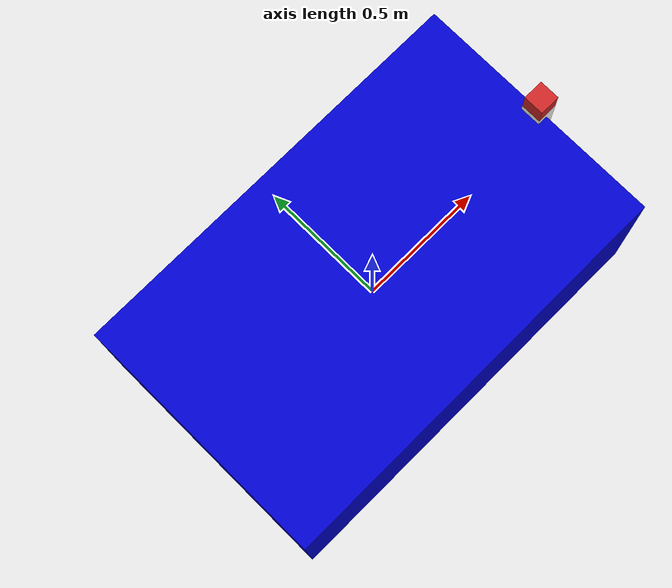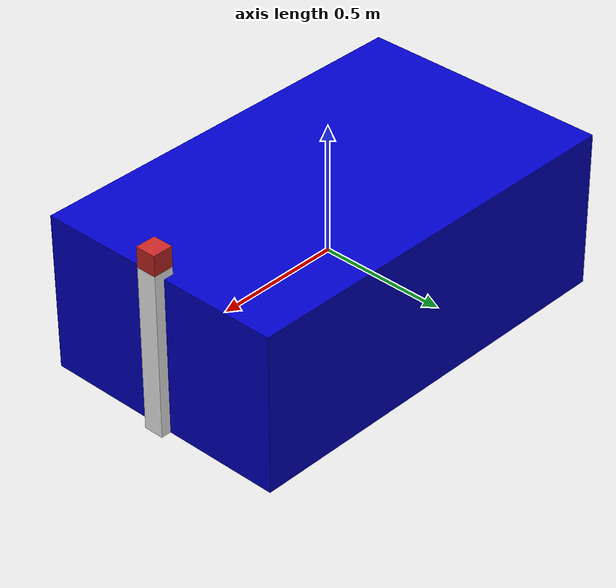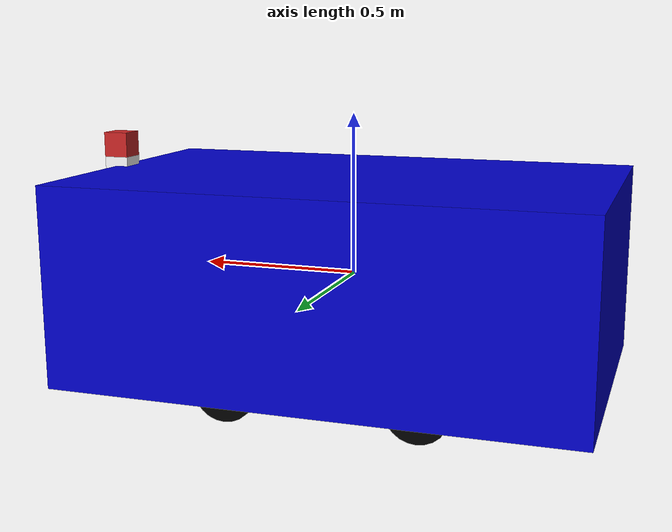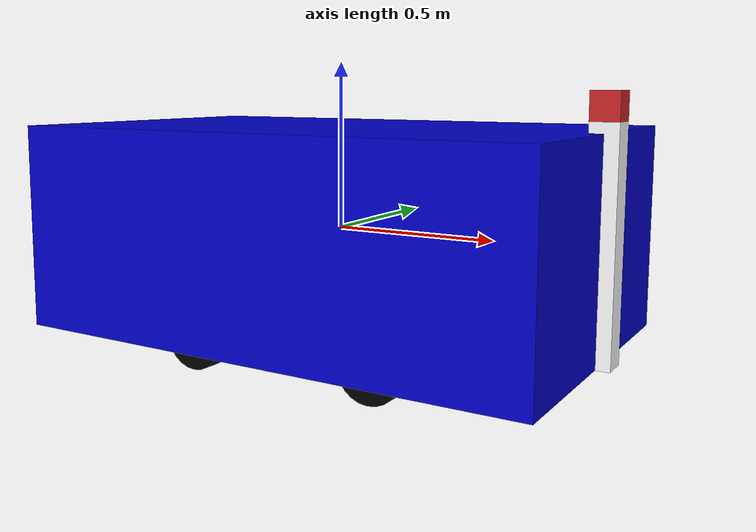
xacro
<robot name="Gertrud" xmlns:xacro="http://ros.org/wiki/xacro">

  <!-- NOTES
      - base link can have no mass by default
      - (movable) links need mass to be shown
  -->

  <xacro:property name="width" value="1.0" />
  <xacro:property name="length" value="1.620" />
  <xacro:property name="height" value="0.62" />
  <xacro:property name="stalk_height" value="0.65" />
  <xacro:property name="stalk_width" value="0.08" />
  <xacro:property name="wheel_diameter" value="0.2" />
  <xacro:property name="wheel_thickness" value="0.08" />
  <xacro:property name="pi" value="3.141592" />

  <material name="blue">
    <color rgba="0 0 0.8 1" />
  </material>
  <material name="black">
    <color rgba="0 0 0 1" />
  </material>
  <material name="white">
    <color rgba="1 1 1 1" />
  </material>

  <link name="base_link">
  </link>

  <link name="body">
    <visual>
      <geometry>
        <box size="${length} ${width} ${height}" />
      </geometry>
      <material name="blue" />
    </visual>
    <collision>
      <geometry>
        <box size="${length} ${width} ${height}" />
      </geometry>
    </collision>
    <inertial>
      <mass value="381" />
      <inertia ixx="84.22" ixy="0.576" ixz="5.383" iyy="102.589" iyz="2.736" izz="43.303" />
    </inertial>
  </link>
  <gazebo reference="body">
    <material>Gazebo/Blue</material>
  </gazebo>

  <joint name="base_to_body" type="fixed">
    <parent link="base_link" />
    <child link="body" />
  </joint>

  <!--Stalk-->
  <link name="stalk">
    <visual>
      <origin xyz="0 0 ${stalk_height/2}" />
      <geometry>
        <box size="${stalk_width} ${stalk_width} ${stalk_height}" />
      </geometry>
      <material name="white" />
    </visual>
    <collision>
      <origin xyz="0 0 ${stalk_height/2}" />
      <geometry>
        <box size="${stalk_width} ${stalk_width} ${stalk_height}" />
      </geometry>
    </collision>
  </link>
  <gazebo reference="stalk">
    <material>Gazebo/White</material>
  </gazebo>

  <link name="laser_link">
    <visual>
      <origin rpy="0 0 0" xyz="0 0 0.04" />
      <geometry>
        <box size="0.08 0.08 0.08" />
      </geometry>
    </visual>
  </link>
  <gazebo reference="laser_link">
    <material>Gazebo/Red</material>
  </gazebo>

  <joint name="body_to_stalk" type="fixed">
    <parent link="body" />
    <child link="stalk" />
    <origin xyz="${length/2} 0 -${height/2}" />
  </joint>

  <joint name="stalk_to_laser" type="fixed">
    <parent link="stalk" />
    <child link="laser_link" />
    <origin rpy="0 0 0" xyz="0 0 ${stalk_height}" />
  </joint>

  <!--Mounts-->
  <xacro:macro name="wheel" params="prefix suffix x y mode">

    <link name="${prefix}_${suffix}_mount">
      <visual>
        <origin xyz="0 0 0" rpy="0 0 0" />
        <geometry>
          <cylinder radius="${wheel_diameter/2}" length="0.01" />
        </geometry>
        <material name="white" />
      </visual>
      <collision>
        <origin xyz="0 0 0" rpy="0 0 0" />
        <geometry>
          <cylinder radius="${wheel_diameter/2}" length="0.01" />
        </geometry>
      </collision>
      <inertial>
        <mass value="1" />
        <inertia ixx="1.0" ixy="0.0" ixz="0.0" iyy="1.0" iyz="0.0" izz="1.0" />
      </inertial>
    </link>
    <joint name="${prefix}_${suffix}_mount_joint" type="${mode}">
      <axis xyz="0 0 1" rpy="0 0 0" />
      <parent link="body" />
      <child link="${prefix}_${suffix}_mount" />
      <origin xyz="${x} ${y} -${height/2}" rpy="0 0 0" />
    </joint>

    <link name="${prefix}_${suffix}_wheel">
      <visual>
        <origin xyz="0 0 0" rpy="${pi/2} 0 0" />
        <geometry>
          <cylinder radius="${wheel_diameter/2}" length="${wheel_thickness}" />
        </geometry>
        <material name="black" />
      </visual>
      <collision>
        <origin xyz="0 0 0" rpy="${pi/2} 0 0" />
        <geometry>
          <cylinder radius="${wheel_diameter/2}" length="${wheel_thickness}" />
        </geometry>
      </collision>
      <inertial>
        <mass value="1" />
        <inertia ixx="1.0" ixy="0.0" ixz="0.0" iyy="1.0" iyz="0.0" izz="1.0" />
      </inertial>
    </link>
    <gazebo reference="${prefix}_${suffix}_wheel">
      <material>Gazebo/Black</material>
    </gazebo>
    <joint name="${prefix}_${suffix}_wheel_joint" type="continuous">
      <axis xyz="0 1 0" rpy="0 0 0" />
      <parent link="${prefix}_${suffix}_mount" />
      <child link="${prefix}_${suffix}_wheel" />
      <origin xyz="0 0 0" rpy="0 0 0" />
    </joint>

  </xacro:macro>
  <xacro:wheel prefix="front" suffix="left" x="0.3" y="0.31" mode="continuous" />
  <xacro:wheel prefix="front" suffix="right" x="0.3" y="-0.31" mode="continuous" />
  <xacro:wheel prefix="back" suffix="left" x="-0.3" y="0.31" mode="fixed" />
  <xacro:wheel prefix="back" suffix="right" x="-0.3" y="-0.31" mode="fixed" />

  <gazebo>
    <plugin name="gertrud_joint_state" filename="libgazebo_ros_joint_state_publisher.so">
      <ros>
      </ros>
      <update_rate>30</update_rate>
      <joint_name>front_left_wheel_joint</joint_name>
      <joint_name>front_right_wheel_joint</joint_name>
      <joint_name>back_left_wheel_joint</joint_name>
      <joint_name>back_right_wheel_joint</joint_name>
      <joint_name>front_left_mount_joint</joint_name>
      <joint_name>front_right_mount_joint</joint_name>
      <joint_name>back_left_mount_joint</joint_name>
      <joint_name>back_right_mount_joint</joint_name>

    </plugin>
    <plugin name="gazebo_ros_joint_pose_trajectory"
      filename="libgazebo_ros_joint_pose_trajectory.so">
      <ros>
      </ros>
      <update_rate>2</update_rate>
    </plugin>
  </gazebo>

  <gazebo reference="laser_link">
    <sensor type="ray" name="nav350">
      <always_on>true</always_on>
      <pose>0 0 0 0 0 0</pose>
      <visualize>true</visualize>
      <update_rate>8</update_rate>
      <ray>
        <scan>
          <horizontal>
            <samples>720</samples>
            <resolution>2</resolution>
            <min_angle>-3.141592</min_angle>
            <max_angle>3.141592</max_angle>
          </horizontal>
        </scan>
        <range>
          <min>0.50</min>
          <max>35.0</max>
          <resolution>0.01</resolution>
        </range>
        <noise>
          <type>gaussian</type>
          <mean>0.0</mean>
          <stddev>0.005</stddev>
        </noise>
      </ray>
      <plugin name="gazebo_ros_nav350_controller" filename="libgazebo_ros_ray_sensor.so">
        <ros>
          <argument>~/out:=scan</argument>
        </ros>
        <output_type>sensor_msgs/LaserScan</output_type>
        <frame_name>laser_link</frame_name>
      </plugin>
    </sensor>
  </gazebo>

  <gazebo>

    <plugin name='ackermann_drive' filename='libgazebo_ros_ackermann_drive.so'>

      <update_rate>100.0</update_rate>

      <!-- wheels -->
      <front_left_joint>front_left_wheel_joint</front_left_joint>
      <front_right_joint>front_right_wheel_joint</front_right_joint>
      <rear_left_joint>back_left_wheel_joint</rear_left_joint>
      <rear_right_joint>back_right_wheel_joint</rear_right_joint>
      <left_steering_joint>front_left_mount_joint</left_steering_joint>
      <right_steering_joint>front_right_mount_joint</right_steering_joint>

      <!-- Max absolute steer angle for tyre in radians-->
      <!-- Any cmd_vel angular z greater than this would be capped -->
      <max_steer>0.6458</max_steer>

      <!-- Max absolute steering angle of steering wheel -->
      <max_steering_angle>7.85</max_steering_angle>

      <!-- Max absolute linear speed in m/s -->
      <max_speed>20</max_speed>

      <!-- PID tuning -->
      <left_steering_pid_gain>1500 0 1</left_steering_pid_gain>
      <left_steering_i_range>0 0</left_steering_i_range>
      <right_steering_pid_gain>1500 0 1</right_steering_pid_gain>
      <right_steering_i_range>0 0</right_steering_i_range>
      <linear_velocity_pid_gain>1000 0 1</linear_velocity_pid_gain>
      <linear_velocity_i_range>0 0</linear_velocity_i_range>

      <!-- output -->
      <publish_odom>true</publish_odom>
      <publish_odom_tf>true</publish_odom_tf>
      <publish_wheel_tf>true</publish_wheel_tf>
      <publish_distance>true</publish_distance>

      <odometry_frame>odom</odometry_frame>
      <robot_base_frame>base_link</robot_base_frame>

    </plugin>
  </gazebo>

</robot>
